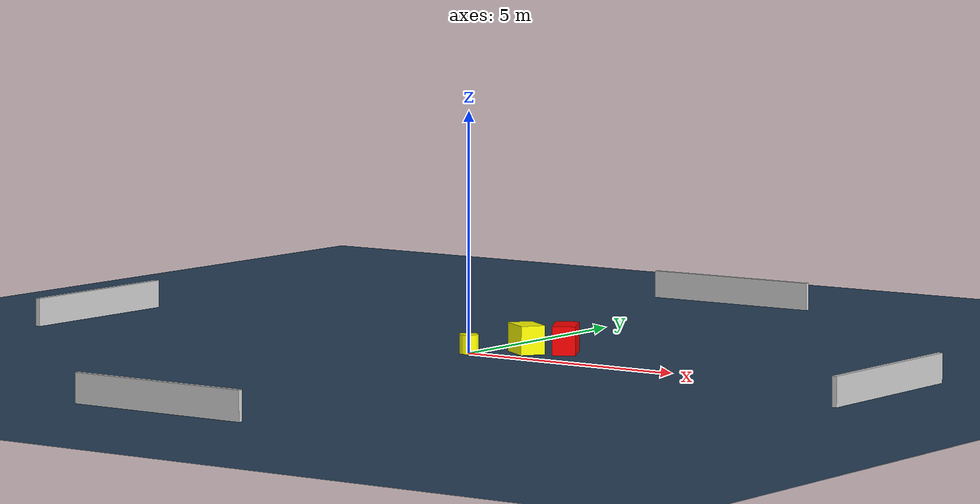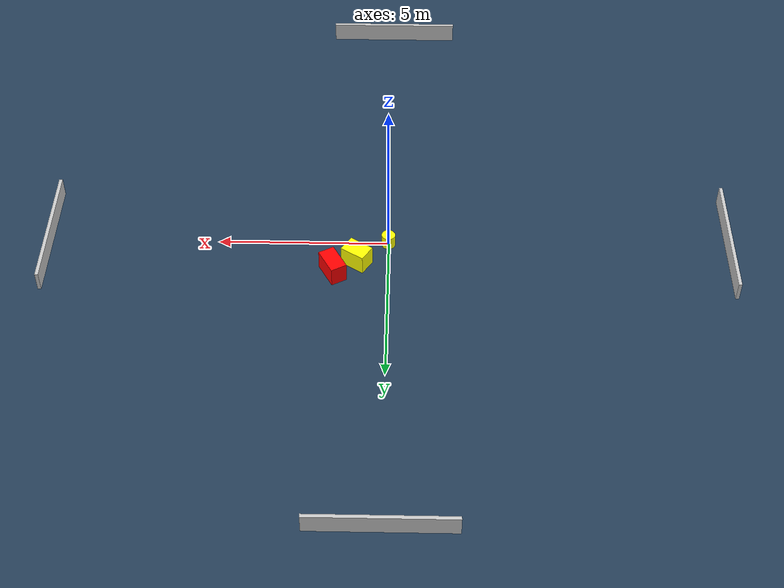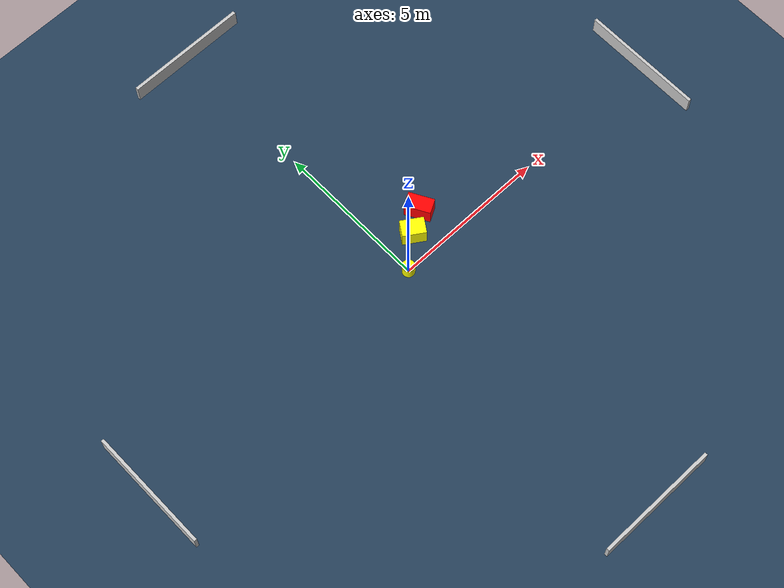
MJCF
<?xml version="1.0" ?>
<mujoco model="generated_environment">
  <option timestep="0.01" integrator="RK4" cone="elliptic"/>
  <default>
    <geom density="1"/>
  </default>
  <asset>
    <texture builtin="gradient" height="3072" name="skybox" rgb1="0.3 0.5 0.7" rgb2="0 0 0" type="skybox" width="512"/>
    <texture builtin="checker" height="300" name="groundplane" rgb1="0.2 0.3 0.4" rgb2="0.1 0.2 0.3" type="2d" width="300"/>
    <material name="groundplane" reflectance="0.2" texrepeat="5 5" texture="groundplane"/>
  </asset>
  <worldbody>
    <light dir="0 0 -1" directional="true" pos="0 0 1.5"/>
    <geom condim="3" friction="0.5 0.005 0.001" material="groundplane" name="floor" pos="0 0 0" size="0 0 0.05" type="plane"/>
    <body name="walls">
      <geom name="wall_1" condim="4" pos="-10.0 0.0 0.3" rgba="0.800000011920929 0.800000011920929 0.800000011920929 1.0" size="0.05 2.0 0.3" type="box"/>
      <geom name="wall_2" condim="4" pos="10.0 0.0 0.3" rgba="0.800000011920929 0.800000011920929 0.800000011920929 1.0" size="0.05 2.0 0.3" type="box"/>
      <geom name="wall_3" condim="4" pos="0.0 -10.0 0.3" rgba="0.800000011920929 0.800000011920929 0.800000011920929 1.0" size="2.0 0.05 0.3" type="box"/>
      <geom name="wall_4" condim="4" pos="0.0 10.0 0.3" rgba="0.800000011920929 0.800000011920929 0.800000011920929 1.0" size="2.0 0.05 0.3" type="box"/>
    </body>
    <body name="robot">
      <joint name="joint_x" type="slide" pos="0 0 0" axis="1 0 0"/>
      <joint name="joint_y" type="slide" pos="0 0 0" axis="0 1 0"/>
      <geom name="robot" type="cylinder" pos="0.0 0.0 0.2" size="0.2 0.2 0.0" mass="5.0" friction="1.0 0.005 0.0001" condim="4" rgba="1.0 1.0 0.0 1.0"/>
    </body>
    <body name="obstacle_1_movable">
      <geom name="obstacle_1_movable" condim="4" pos="0.9093014282162616 0.7644133199458262 0.3" euler="0 0 326.79475495700234" friction="0.0 0.005 0.001" rgba="1.0 1.0 0.0 1.0" size="0.37542350038823935 0.2614943062949159 0.3" type="box" mass="0.1"/>
      <joint type="free"/>
    </body>
    <body name="obstacle_2_static">
      <geom name="obstacle_2_static" condim="4" pos="1.5948937512784447 1.2047254296604764 0.3" euler="0 0 118.96894141094953" friction="0.0 0.005 0.001" rgba="1.0 0.0 0.0 1.0" size="0.4163805154480155 0.2423753403955247 0.3" type="box"/>
    </body>
  </worldbody>
  <actuator>
    <motor name="actuator_x" joint="joint_x" gear="1" ctrlrange="-1 1"/>
    <motor name="actuator_y" joint="joint_y" gear="1" ctrlrange="-1 1"/>
  </actuator>
</mujoco>
